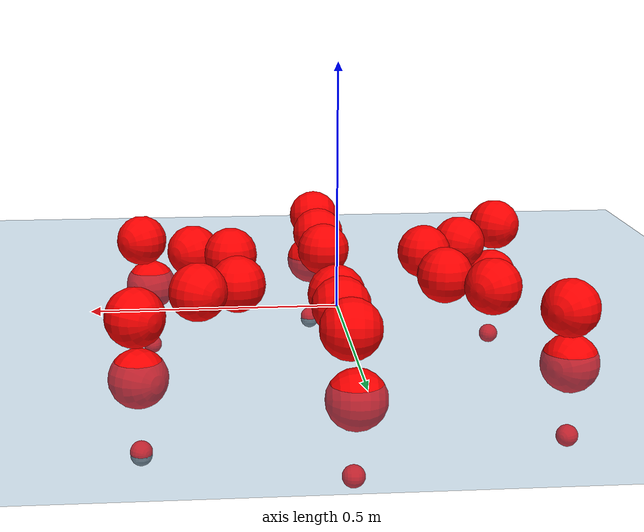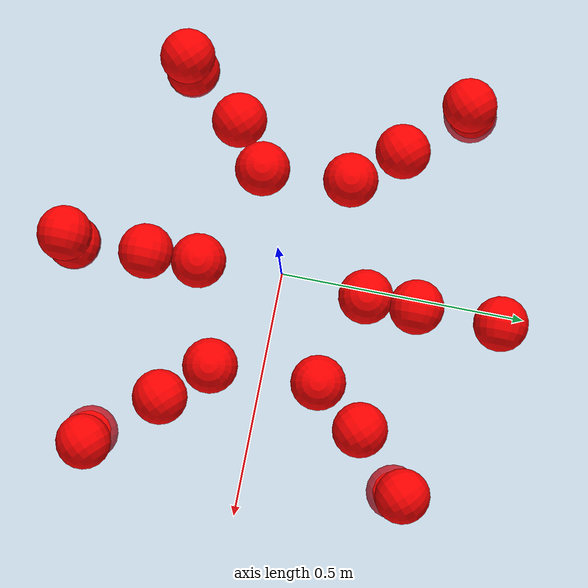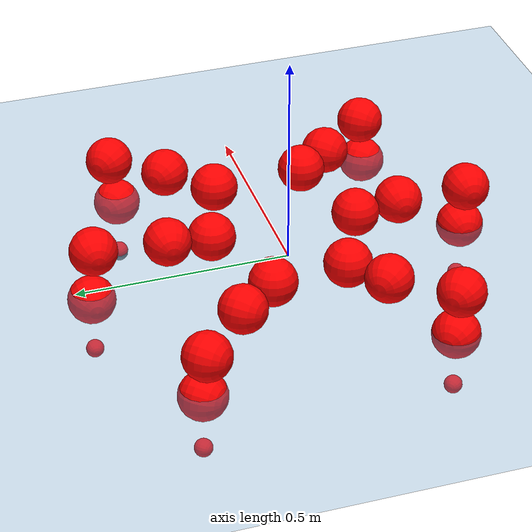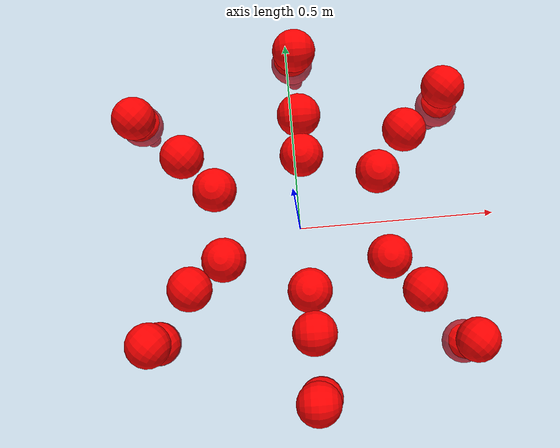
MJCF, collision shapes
<mujoco model="Golem">
  <compiler angle="radian" assetdir="assets" balanceinertia="true" inertiafromgeom="false"/>

  <option timestep="0.005" density="1.2" viscosity="2e-05"/>

  <size nkey="1"/>

  <visual>
    <quality shadowsize="8192"/>
    <map shadowclip="0.5"/>
  </visual>

  <default>
    <default class="/">
      <joint armature="0.01" damping="0.01" frictionloss="0.01"/>
      <geom contype="0" conaffinity="0" group="1" solref="-1000 -80"/>
      <site size="0.01 0.005 0.005" group="5"/>
      <general forcelimited="true" biastype="affine" gainprm="25" biasprm="0 -25 -0.5"/>
      <default class="visual">
        <geom type="mesh" group="2"/>
      </default>
      <default class="collision">
        <geom group="3"/>
      </default>
      <default class="foot">
        <geom size="0.01 0 0" condim="6" group="4" priority="1" solimp="0.015 1 0.01"/>
      </default>
      <default class="reward_collision_sphere">
        <geom group="5" rgba="1 0 0 1"/>
      </default>
    </default>
  </default>

  <asset>
    <texture type="skybox" colorspace="auto" name="//unnamed_texture_0" builtin="gradient" rgb1="0.95 0.95 0.95" rgb2="0.95 0.95 0.95" width="100" height="600"/>
    <texture type="2d" colorspace="auto" name="texplane" builtin="checker" rgb1="0.345 0.575 0.748" rgb2="0.345 0.575 0.748" markrgb="1 1 1" width="512" height="512"/>
    <material name="MatPlane" class="/" texture="texplane" texuniform="true" texrepeat="2 2" specular="0.9"/>
    <mesh name="body" class="/" file="body.stl" scale="0.001 0.001 0.001"/>
    <mesh name="coxa" class="/" file="coxa.stl" scale="0.001 0.001 0.001"/>
    <mesh name="femur" class="/" file="femur.stl" scale="0.001 0.001 0.001"/>
    <mesh name="tibia" class="/" file="tibia.stl" scale="0.001 0.001 0.001"/>
    <mesh name="tarsus" class="/" file="tarsus.stl" scale="0.001 0.001 0.001"/>
  </asset>

  <worldbody>
    <geom name="floor" class="/" size="100 100 0.125" type="plane" group="0" material="MatPlane"/>
    <light name="toplight_shadow" class="/" pos="0 0 5" dir="0.0990148 0.0990148 -0.990148" type="directional" ambient="0.04 0.04 0.04" diffuse="0.55 0.55 0.55" specular="0.12 0.12 0.12"/>
    <light name="toplight_fill" class="/" pos="0 0 5" dir="0.0990148 0.0990148 -0.990148" type="directional" castshadow="false" ambient="0.04 0.04 0.04" diffuse="0.3 0.3 0.3" specular="0.08 0.08 0.08"/>
    <body name="trunk" pos="0.00996644 0.00915256 -0.00394129" quat="0.999993 -0.00320104 -0.00175289 -0.00029427">
      <inertial pos="-0.00983706 -0.00318217 0.0149281" quat="0.998905 -0.0104563 0.0120242 -0.0439942" mass="9.09608" diaginertia="0.0352973 0.0682451 0.031215"/>
      <joint name="//unnamed_joint_0" type="free"/>
      <geom name="//unnamed_geom_1" class="/" pos="0 0 0.0845406" quat="1 0 0 0" type="mesh" rgba="0.9 0.9 0.9 1" mesh="body"/>
      <site name="imu" class="/" pos="0.109845 -0.0496938 0.132751" size="0.0138532"/>
      <camera name="track" class="/" pos="0 -3.03098 0" quat="0.707107 0.707107 0 0" mode="trackcom"/>
      <camera name="ego_camera" class="/" pos="0.171537 0 0.132095" quat="-0.5 -0.5 0.5 0.5"/>
      <body name="coxa_RR" pos="-0.228732 -0.11333 0.097264" quat="0.382747 0.0017427 -0.00235227 -0.923848">
        <inertial pos="0.000154917 -0.00343998 -0.00615227" quat="1 0.000368838 -0.000296885 -0.000290605" mass="0.497196" diaginertia="0.0420232 0.0731733 0.0453104"/>
        <joint name="coxa_joint_RR" class="/" pos="0 0 0" axis="-0.00101 0.00614247 -0.999981" range="-3.12394 3.28052" armature="0.0165669" damping="0.0333926" frictionloss="0.0153756"/>
        <geom name="//unnamed_geom_2" class="/" type="mesh" rgba="0.2 0.2 0.2 1" mesh="coxa"/>
        <geom name="//unnamed_geom_3" class="reward_collision_sphere" size="0.0554127" pos="-0.0395855 0 0"/>
        <body name="femur_RR" pos="0.0672198 -0.0159503 0.00305432" quat="0.499861 -0.499866 0.500035 0.500238">
          <inertial pos="0.0150938 0.000381889 0.016222" quat="0.997029 -0.0100206 -0.0596831 0.047642" mass="0.608028" diaginertia="0.0463742 0.0933408 0.0477066"/>
          <joint name="femur_joint_RR" class="/" pos="0 0 0" axis="0.0352326 0.0182668 -0.999212" range="-3.03371 3.12779" armature="0.0146783" damping="0" frictionloss="0.0143869"/>
          <geom name="//unnamed_geom_4" class="/" type="mesh" rgba="0.9 0.9 0.9 1" mesh="femur"/>
          <geom name="//unnamed_geom_5" class="reward_collision_sphere" size="0.0554127"/>
          <body name="tibia_RR" pos="-0.00842425 -0.164021 0.0147932" quat="0.000300322 1 0.000101475 -0.000911645">
            <inertial pos="-0.000359671 -5.5011e-06 0.0128709" quat="0.99897 -0.0398755 0.0214759 0.00281035" mass="0.382721" diaginertia="0.033217 0.05449 0.031931"/>
            <joint name="tibia_joint_RR" class="/" pos="0 0 0" axis="-0.0599881 0.00295099 0.998195" stiffness="0.042874" range="-2.95413 3.14762" armature="0.019289" damping="0.0183051" frictionloss="0.0218141"/>
            <geom name="//unnamed_geom_6" class="/" type="mesh" rgba="0.2 0.2 0.2 1" mesh="tibia"/>
            <geom name="//unnamed_geom_7" class="reward_collision_sphere" size="0.0554127"/>
            <body name="tarsus_RR" pos="0.11395 -0.00689431 0.00123846" quat="1 -9.90287e-05 0.000109747 -4.03241e-05">
              <inertial pos="0.0863397 0.000501948 -1.70112e-06" quat="0.465916 0.550773 0.519819 0.457559" mass="0.473808" diaginertia="0.0407573 0.0886959 0.0377556"/>
              <joint name="tarsus_joint_RR" class="/" pos="0 0 0" axis="0.0221121 -0.0751897 0.996924" range="-3.10251 3.33536" armature="0.0186784" damping="0.0121332" frictionloss="0.0101801"/>
              <geom name="//unnamed_geom_8" class="/" type="mesh" rgba="0.9 0.9 0.9 1" mesh="tarsus"/>
              <geom name="foot_1" class="foot" size="0.0142377" pos="0.147786 0 0" quat="0 -0.707107 0 0.707107"/>
              <geom name="//unnamed_geom_10" class="reward_collision_sphere" size="0.0554127"/>
              <geom name="//unnamed_geom_11" class="reward_collision_sphere" size="0.0207798" pos="0.141848 0 0"/>
              <site name="foot_1" class="foot" pos="0.147786 0 0" quat="0 -0.707107 0 0.707107" size="0.0138532"/>
            </body>
          </body>
        </body>
      </body>
      <body name="coxa_RM" pos="0.00328984 -0.215077 0.0827202" quat="0.705179 0.00406156 -0.00614232 -0.708991">
        <inertial pos="0.0121375 -0.000660836 0.0139241" quat="0.998441 -0.0472367 0.0256351 -0.015086" mass="0.522034" diaginertia="0.0531833 0.0794873 0.0468686"/>
        <joint name="coxa_joint_RM" class="/" pos="0 0 0" axis="-0.00309919 0.00137398 -0.999994" range="-3.05697 3.1942" armature="0.0115613" damping="0.0231162" frictionloss="0.0189223"/>
        <geom name="//unnamed_geom_12" class="/" type="mesh" rgba="0.2 0.2 0.2 1" mesh="coxa"/>
        <geom name="//unnamed_geom_13" class="reward_collision_sphere" size="0.0554127" pos="-0.0395855 0 0"/>
        <body name="femur_RM" pos="0.0661098 0.00350082 0.0107625" quat="0.502059 -0.495622 0.502389 0.499901">
          <inertial pos="-0.0142592 -4.39055e-06 -0.000624095" quat="0.997197 0.0650017 0.0236182 0.0285581" mass="0.569152" diaginertia="0.0379093 0.0929102 0.042448"/>
          <joint name="femur_joint_RM" class="/" pos="0 0 0" axis="-0.00103783 -0.0603689 -0.998176" stiffness="0.0450659" range="-3.15675 3.13068" armature="0.00967145" damping="0" frictionloss="0.0155667"/>
          <geom name="//unnamed_geom_14" class="/" type="mesh" rgba="0.9 0.9 0.9 1" mesh="femur"/>
          <geom name="//unnamed_geom_15" class="reward_collision_sphere" size="0.0554127"/>
          <body name="tibia_RM" pos="-0.0047103 -0.165998 -0.00131051" quat="6.77952e-05 1 0.000443846 -4.88012e-05">
            <inertial pos="0.0150419 -0.00697197 0.00925603" quat="0.999848 0.00510352 -0.000429735 0.0166542" mass="0.443059" diaginertia="0.0320378 0.0851855 0.0447416"/>
            <joint name="tibia_joint_RM" class="/" pos="0 0 0" axis="0.0204188 -0.0454076 0.99876" stiffness="0.0224125" range="-3.16444 3.27576" armature="0.0135353" damping="0.0173346" frictionloss="0.0184552"/>
            <geom name="//unnamed_geom_16" class="/" type="mesh" rgba="0.2 0.2 0.2 1" mesh="tibia"/>
            <geom name="//unnamed_geom_17" class="reward_collision_sphere" size="0.0554127"/>
            <body name="tarsus_RM" pos="0.106941 -0.00711602 -0.00382022" quat="1 -0.00053286 -0.000170198 0.000543011">
              <inertial pos="0.083681 0.00571109 0.00225019" quat="0.481552 0.504935 0.503913 0.509136" mass="0.478681" diaginertia="0.0431589 0.0740107 0.032049"/>
              <joint name="tarsus_joint_RM" class="/" pos="0 0 0" axis="0.0286409 0.0494045 0.998368" range="-3.17666 3.15682" armature="0.0145446" damping="0.00442268" frictionloss="0.0125197"/>
              <geom name="//unnamed_geom_18" class="/" type="mesh" rgba="0.9 0.9 0.9 1" mesh="tarsus"/>
              <geom name="foot_2" class="foot" size="0.0209055" pos="0.147786 0 0" quat="0 -0.707107 0 0.707107"/>
              <geom name="//unnamed_geom_20" class="reward_collision_sphere" size="0.0554127"/>
              <geom name="//unnamed_geom_21" class="reward_collision_sphere" size="0.0207798" pos="0.141848 0 0"/>
              <site name="foot_2" class="foot" pos="0.147786 0 0" quat="0 -0.707107 0 0.707107" size="0.0138532"/>
            </body>
          </body>
        </body>
      </body>
      <body name="coxa_RF" pos="0.233212 -0.138766 0.0917469" quat="0.923864 -1.37565e-05 -0.000139285 -0.382721">
        <inertial pos="0.0158692 -0.0037174 -0.00109469" quat="0.998048 -0.00788267 -0.00032784 0.061959" mass="0.38389" diaginertia="0.0323307 0.0860336 0.0365083"/>
        <joint name="coxa_joint_RF" class="/" pos="0 0 0" axis="5.97805e-05 -0.00065627 -1" range="-2.99533 3.14725" armature="0.00663545" damping="0.0325621" frictionloss="0.0180198"/>
        <geom name="//unnamed_geom_22" class="/" type="mesh" rgba="0.2 0.2 0.2 1" mesh="coxa"/>
        <geom name="//unnamed_geom_23" class="reward_collision_sphere" size="0.0554127" pos="-0.0395855 0 0"/>
        <body name="femur_RF" pos="0.0780122 -0.00503142 -0.0139838" quat="0.500873 -0.500667 0.49746 0.500992">
          <inertial pos="-0.0088854 -0.0149795 -0.00849573" quat="0.999944 -0.00458718 -0.00369533 -0.00876492" mass="0.603624" diaginertia="0.0353427 0.0929227 0.0418565"/>
          <joint name="femur_joint_RF" class="/" pos="0 0 0" axis="0.0459567 0.0150344 -0.99883" stiffness="0.0729945" range="-3.21011 3.34167" armature="0.0143337" damping="0" frictionloss="0.0172886"/>
          <geom name="//unnamed_geom_24" class="/" type="mesh" rgba="0.9 0.9 0.9 1" mesh="femur"/>
          <geom name="//unnamed_geom_25" class="reward_collision_sphere" size="0.0554127"/>
          <body name="tibia_RF" pos="0.00765636 -0.175411 -0.0116768" quat="0.000850923 1 0.000113614 -0.00026552">
            <inertial pos="0.0136295 0.010626 -0.0125278" quat="0.999008 -0.0384806 0.0214249 -0.00662833" mass="0.461846" diaginertia="0.0401578 0.0783036 0.0400738"/>
            <joint name="tibia_joint_RF" class="/" pos="0 0 0" axis="0.00765726 0.0175382 0.999817" range="-3.17668 3.35596" armature="0.014926" damping="0.0885264" frictionloss="0.0127659"/>
            <geom name="//unnamed_geom_26" class="/" type="mesh" rgba="0.2 0.2 0.2 1" mesh="tibia"/>
            <geom name="//unnamed_geom_27" class="reward_collision_sphere" size="0.0554127"/>
            <body name="tarsus_RF" pos="0.104005 -0.0137623 0.0132611" quat="0.999987 0.00106042 0.00206562 -0.00456136">
              <inertial pos="0.0809135 0.000647552 0.000855434" quat="0.489779 0.488341 0.514684 0.506695" mass="0.486187" diaginertia="0.0360195 0.0639981 0.0459438"/>
              <joint name="tarsus_joint_RF" class="/" pos="0 0 0" axis="-0.0308758 0.0080836 0.999491" stiffness="0.0256509" range="-2.97152 3.15093" armature="0.00600988" damping="0" frictionloss="0.00280023"/>
              <geom name="//unnamed_geom_28" class="/" type="mesh" rgba="0.9 0.9 0.9 1" mesh="tarsus"/>
              <geom name="foot_3" class="foot" size="0.0064203" pos="0.147786 0 0" quat="0 -0.707107 0 0.707107"/>
              <geom name="//unnamed_geom_30" class="reward_collision_sphere" size="0.0554127"/>
              <geom name="//unnamed_geom_31" class="reward_collision_sphere" size="0.0207798" pos="0.141848 0 0"/>
              <site name="foot_3" class="foot" pos="0.147786 0 0" quat="0 -0.707107 0 0.707107" size="0.0138532"/>
            </body>
          </body>
        </body>
      </body>
      <body name="coxa_LR" pos="-0.240837 0.120259 0.0948495" quat="0.387637 0.00403299 -0.0015693 0.921802">
        <inertial pos="0.00340557 -0.00475172 0.0154539" quat="0.998341 -0.00174371 -0.0136179 0.0559165" mass="0.741869" diaginertia="0.0489452 0.0958727 0.0461586"/>
        <joint name="coxa_joint_LR" class="/" pos="0 0 0" axis="0.00365631 0.000224354 -0.999993" range="-3.02924 2.82736" armature="0.00595043" damping="0" frictionloss="0.0246118"/>
        <geom name="//unnamed_geom_32" class="/" type="mesh" rgba="0.2 0.2 0.2 1" mesh="coxa"/>
        <geom name="//unnamed_geom_33" class="reward_collision_sphere" size="0.0554127" pos="-0.0395855 0 0"/>
        <body name="femur_LR" pos="0.0795553 -0.00959777 0.000390295" quat="0.500419 -0.500091 0.500104 0.499385">
          <inertial pos="0.00100099 0.00216448 0.00247264" quat="0.999011 -0.0215506 -0.0350627 0.0168527" mass="0.590478" diaginertia="0.0482808 0.0709237 0.0433981"/>
          <joint name="femur_joint_LR" class="/" pos="0 0 0" axis="0.0017493 0.0284153 0.999595" stiffness="0.0481856" range="-3.16917 3.36844" armature="0.00727872" damping="0" frictionloss="0.0177076"/>
          <geom name="//unnamed_geom_34" class="/" type="mesh" rgba="0.9 0.9 0.9 1" mesh="femur"/>
          <geom name="//unnamed_geom_35" class="reward_collision_sphere" size="0.0554127"/>
          <body name="tibia_LR" pos="0.0123572 -0.165625 0.00543176" quat="-0.00336872 0.999983 -0.0046471 -0.000322179">
            <inertial pos="-0.00965837 -0.014533 -0.000699334" quat="0.998247 -0.0571889 0.00780033 -0.0130883" mass="0.618768" diaginertia="0.0328824 0.0694996 0.0492732"/>
            <joint name="tibia_joint_LR" class="/" pos="0 0 0" axis="0.00322846 -0.00125262 -0.999994" range="-3.13351 3.13085" armature="0.00949143" damping="0" frictionloss="0.00774647"/>
            <geom name="//unnamed_geom_36" class="/" type="mesh" rgba="0.2 0.2 0.2 1" mesh="tibia"/>
            <geom name="//unnamed_geom_37" class="reward_collision_sphere" size="0.0554127"/>
            <body name="tarsus_LR" pos="0.102633 0.00614483 0.00806524" quat="0.999993 -0.00139108 -0.00343537 0.000249732">
              <inertial pos="0.0871705 0.00962379 0.00621084" quat="0.475326 0.518366 0.518539 0.486291" mass="0.6629" diaginertia="0.0503017 0.0964702 0.0481193"/>
              <joint name="tarsus_joint_LR" class="/" pos="0 0 0" axis="0.00941798 0.00574412 -0.999939" range="-3.06754 3.22268" armature="0.0253293" damping="0.00633226" frictionloss="0.0181753"/>
              <geom name="//unnamed_geom_38" class="/" type="mesh" rgba="0.9 0.9 0.9 1" mesh="tarsus"/>
              <geom name="foot_4" class="foot" size="0.0115231" pos="0.147786 0 0" quat="0.707107 0 -0.707107 0"/>
              <geom name="//unnamed_geom_40" class="reward_collision_sphere" size="0.0554127"/>
              <geom name="//unnamed_geom_41" class="reward_collision_sphere" size="0.0207798" pos="0.141848 0 0"/>
              <site name="foot_4" class="foot" pos="0.147786 0 0" quat="0.707107 0 -0.707107 0" size="0.0138532"/>
            </body>
          </body>
        </body>
      </body>
      <body name="coxa_LM" pos="0.0100394 0.206061 0.0823379" quat="0.70861 -0.00774236 -0.00230731 0.705554">
        <inertial pos="-0.0124791 0.0135427 0.00910785" quat="0.998105 0.0578065 -0.0070751 0.0198545" mass="0.515659" diaginertia="0.0411358 0.068626 0.0363112"/>
        <joint name="coxa_joint_LM" class="/" pos="0 0 0" axis="-0.00558385 0.00455676 -0.999974" range="-3.13098 3.13405" armature="0.00341073" damping="0.0502739" frictionloss="0.00978656"/>
        <geom name="//unnamed_geom_42" class="/" type="mesh" rgba="0.2 0.2 0.2 1" mesh="coxa"/>
        <geom name="//unnamed_geom_43" class="reward_collision_sphere" size="0.0554127" pos="-0.0395855 0 0"/>
        <body name="femur_LM" pos="0.0633034 -0.00103376 0.00753426" quat="0.501736 -0.503425 0.498528 0.49628">
          <inertial pos="0.012116 -0.00119094 0.013633" quat="0.99896 -0.0156083 -0.0351782 0.0244368" mass="0.384289" diaginertia="0.036597 0.066901 0.0346691"/>
          <joint name="femur_joint_LM" class="/" pos="0 0 0" axis="-0.00626505 -0.00026812 0.99998" range="-3.33343 3.03371" armature="0.00653911" damping="0.0448918" frictionloss="0.0144595"/>
          <geom name="//unnamed_geom_44" class="/" type="mesh" rgba="0.9 0.9 0.9 1" mesh="femur"/>
          <geom name="//unnamed_geom_45" class="reward_collision_sphere" size="0.0554127"/>
          <body name="tibia_LM" pos="-0.00945633 -0.169992 -0.000797241" quat="0.000703382 0.999996 0.00249471 -0.000970359">
            <inertial pos="-0.0151431 -0.015795 -0.0161976" quat="1 -0.000166403 -0.000348461 -0.000170763" mass="0.536347" diaginertia="0.0446683 0.0951255 0.0353819"/>
            <joint name="tibia_joint_LM" class="/" pos="0 0 0" axis="0.0172158 -0.0396252 -0.999066" stiffness="0.0543276" range="-3.24602 3.14137" armature="0.00642274" damping="0" frictionloss="0.0217589"/>
            <geom name="//unnamed_geom_46" class="/" type="mesh" rgba="0.2 0.2 0.2 1" mesh="tibia"/>
            <geom name="//unnamed_geom_47" class="reward_collision_sphere" size="0.0554127"/>
            <body name="tarsus_LM" pos="0.122708 0.0128621 -0.0119812" quat="0.999987 -0.0046532 -0.00185491 -0.000165521">
              <inertial pos="0.0726725 -0.0070704 -0.00951026" quat="0.497619 0.496476 0.494706 0.511031" mass="0.431594" diaginertia="0.0381816 0.0511154 0.0354554"/>
              <joint name="tarsus_joint_LM" class="/" pos="0 0 0" axis="-0.0447641 -0.0394585 -0.998218" range="-2.80063 3.08138" armature="0.0135765" damping="0" frictionloss="0.0142764"/>
              <geom name="//unnamed_geom_48" class="/" type="mesh" rgba="0.9 0.9 0.9 1" mesh="tarsus"/>
              <geom name="foot_5" class="foot" size="0.014235" pos="0.147786 0 0" quat="0.707107 0 -0.707107 0"/>
              <geom name="//unnamed_geom_50" class="reward_collision_sphere" size="0.0554127"/>
              <geom name="//unnamed_geom_51" class="reward_collision_sphere" size="0.0207798" pos="0.141848 0 0"/>
              <site name="foot_5" class="foot" pos="0.147786 0 0" quat="0.707107 0 -0.707107 0" size="0.0138532"/>
            </body>
          </body>
        </body>
      </body>
      <body name="coxa_LF" pos="0.224963 0.134056 0.0873273" quat="0.924894 0.00348822 0.00532138 0.380172">
        <inertial pos="-8.17237e-05 -0.0154474 0.000834923" quat="0.999974 0.000717183 -0.00406191 0.00587548" mass="0.491656" diaginertia="0.0360093 0.0550875 0.0322419"/>
        <joint name="coxa_joint_LF" class="/" pos="0 0 0" axis="-0.0117564 0.0477276 -0.998791" range="-3.12706 3.0965" armature="0.00300346" damping="0" frictionloss="0.0100432"/>
        <geom name="//unnamed_geom_52" class="/" type="mesh" rgba="0.2 0.2 0.2 1" mesh="coxa"/>
        <geom name="//unnamed_geom_53" class="reward_collision_sphere" size="0.0554127" pos="-0.0395855 0 0"/>
        <body name="femur_LF" pos="0.0836622 0.0168861 0.0145626" quat="0.498918 -0.495786 0.503981 0.501279">
          <inertial pos="-0.0103689 0.0041326 -0.0161628" quat="0.997836 -0.0472675 0.0399584 -0.0221688" mass="0.512907" diaginertia="0.0446736 0.0633202 0.0411891"/>
          <joint name="femur_joint_LF" class="/" pos="0 0 0" axis="-0.0518138 0.0255478 0.99833" stiffness="0.056943" range="-3.13258 3.43845" armature="0.0151178" damping="0.0592051" frictionloss="0.0105248"/>
          <geom name="//unnamed_geom_54" class="/" type="mesh" rgba="0.9 0.9 0.9 1" mesh="femur"/>
          <geom name="//unnamed_geom_55" class="reward_collision_sphere" size="0.0554127"/>
          <body name="tibia_LF" pos="0.0108065 -0.155545 -0.00124191" quat="-0.000764887 0.999978 -0.00463454 -0.00473203">
            <inertial pos="-0.00459349 0.0145412 -0.000690869" quat="0.999849 -0.0148148 0.00814528 0.00409222" mass="0.544329" diaginertia="0.044858 0.0807132 0.0437389"/>
            <joint name="tibia_joint_LF" class="/" pos="0 0 0" axis="-0.0619898 -0.00677056 -0.998054" stiffness="0.00715759" range="-2.88856 3.1007" armature="0.00741471" damping="0.0117699" frictionloss="0.0042102"/>
            <geom name="//unnamed_geom_56" class="/" type="mesh" rgba="0.2 0.2 0.2 1" mesh="tibia"/>
            <geom name="//unnamed_geom_57" class="reward_collision_sphere" size="0.0554127"/>
            <body name="tarsus_LF" pos="0.118915 -0.00963652 0.00738587" quat="0.999966 0.00621283 0.00495471 0.0022546">
              <inertial pos="0.0890969 0.00337185 0.0015058" quat="0.501948 0.497359 0.508151 0.492407" mass="0.508796" diaginertia="0.0421892 0.0830084 0.0456216"/>
              <joint name="tarsus_joint_LF" class="/" pos="0 0 0" axis="0.0790978 -0.0167307 -0.996726" range="-3.26681 3.38767" armature="0.00961331" damping="0.0740785" frictionloss="0.00814334"/>
              <geom name="//unnamed_geom_58" class="/" type="mesh" rgba="0.9 0.9 0.9 1" mesh="tarsus"/>
              <geom name="foot_6" class="foot" size="0.0203749" pos="0.147786 0 0" quat="0.707107 0 -0.707107 0"/>
              <geom name="//unnamed_geom_60" class="reward_collision_sphere" size="0.0554127"/>
              <geom name="//unnamed_geom_61" class="reward_collision_sphere" size="0.0207798" pos="0.141848 0 0"/>
              <site name="foot_6" class="foot" pos="0.147786 0 0" quat="0.707107 0 -0.707107 0" size="0.0138532"/>
            </body>
          </body>
        </body>
      </body>
    </body>
  </worldbody>

  <contact>
    <pair class="/" geom1="floor" geom2="foot_1" name="//unnamed_contact_0"/>
    <pair class="/" geom1="floor" geom2="foot_2" name="//unnamed_contact_1"/>
    <pair class="/" geom1="floor" geom2="foot_3" name="//unnamed_contact_2"/>
    <pair class="/" geom1="floor" geom2="foot_4" name="//unnamed_contact_3"/>
    <pair class="/" geom1="floor" geom2="foot_5" name="//unnamed_contact_4"/>
    <pair class="/" geom1="floor" geom2="foot_6" name="//unnamed_contact_5"/>
  </contact>

  <actuator>
    <general name="coxa_joint_RR" class="/" joint="coxa_joint_RR" forcerange="-15.6765 15.6765" gainprm="29.0312" biasprm="0 -29.0312 -0.857185"/>
    <general name="femur_joint_RR" class="/" joint="femur_joint_RR" forcerange="-7.15959 7.15959" gainprm="29.0312" biasprm="0 -29.0312 -0.857185"/>
    <general name="tibia_joint_RR" class="/" joint="tibia_joint_RR" forcerange="-16.1059 16.1059" gainprm="29.0312" biasprm="0 -29.0312 -0.857185"/>
    <general name="tarsus_joint_RR" class="/" joint="tarsus_joint_RR" forcerange="-6.81355 6.81355" gainprm="29.0312" biasprm="0 -29.0312 -0.857185"/>
    <general name="coxa_joint_RM" class="/" joint="coxa_joint_RM" forcerange="-10.2097 10.2097" gainprm="29.0312" biasprm="0 -29.0312 -0.857185"/>
    <general name="femur_joint_RM" class="/" joint="femur_joint_RM" forcerange="-9.96363 9.96363" gainprm="29.0312" biasprm="0 -29.0312 -0.857185"/>
    <general name="tibia_joint_RM" class="/" joint="tibia_joint_RM" forcerange="-15.2727 15.2727" gainprm="29.0312" biasprm="0 -29.0312 -0.857185"/>
    <general name="tarsus_joint_RM" class="/" joint="tarsus_joint_RM" forcerange="-4.27808 4.27808" gainprm="29.0312" biasprm="0 -29.0312 -0.857185"/>
    <general name="coxa_joint_RF" class="/" joint="coxa_joint_RF" forcerange="-8.43996 8.43996" gainprm="29.0312" biasprm="0 -29.0312 -0.857185"/>
    <general name="femur_joint_RF" class="/" joint="femur_joint_RF" forcerange="-10.5205 10.5205" gainprm="29.0312" biasprm="0 -29.0312 -0.857185"/>
    <general name="tibia_joint_RF" class="/" joint="tibia_joint_RF" forcerange="-4.67033 4.67033" gainprm="29.0312" biasprm="0 -29.0312 -0.857185"/>
    <general name="tarsus_joint_RF" class="/" joint="tarsus_joint_RF" forcerange="-7.2487 7.2487" gainprm="29.0312" biasprm="0 -29.0312 -0.857185"/>
    <general name="coxa_joint_LR" class="/" joint="coxa_joint_LR" forcerange="-10.4554 10.4554" gainprm="29.0312" biasprm="0 -29.0312 -0.857185"/>
    <general name="femur_joint_LR" class="/" joint="femur_joint_LR" forcerange="-14.7559 14.7559" gainprm="29.0312" biasprm="0 -29.0312 -0.857185"/>
    <general name="tibia_joint_LR" class="/" joint="tibia_joint_LR" forcerange="-12.9394 12.9394" gainprm="29.0312" biasprm="0 -29.0312 -0.857185"/>
    <general name="tarsus_joint_LR" class="/" joint="tarsus_joint_LR" forcerange="-13.9696 13.9696" gainprm="29.0312" biasprm="0 -29.0312 -0.857185"/>
    <general name="coxa_joint_LM" class="/" joint="coxa_joint_LM" forcerange="-12.941 12.941" gainprm="29.0312" biasprm="0 -29.0312 -0.857185"/>
    <general name="femur_joint_LM" class="/" joint="femur_joint_LM" forcerange="-12.1341 12.1341" gainprm="29.0312" biasprm="0 -29.0312 -0.857185"/>
    <general name="tibia_joint_LM" class="/" joint="tibia_joint_LM" forcerange="-14.2835 14.2835" gainprm="29.0312" biasprm="0 -29.0312 -0.857185"/>
    <general name="tarsus_joint_LM" class="/" joint="tarsus_joint_LM" forcerange="-11.7378 11.7378" gainprm="29.0312" biasprm="0 -29.0312 -0.857185"/>
    <general name="coxa_joint_LF" class="/" joint="coxa_joint_LF" forcerange="-12.5568 12.5568" gainprm="29.0312" biasprm="0 -29.0312 -0.857185"/>
    <general name="femur_joint_LF" class="/" joint="femur_joint_LF" forcerange="-8.23328 8.23328" gainprm="29.0312" biasprm="0 -29.0312 -0.857185"/>
    <general name="tibia_joint_LF" class="/" joint="tibia_joint_LF" forcerange="-6.20488 6.20488" gainprm="29.0312" biasprm="0 -29.0312 -0.857185"/>
    <general name="tarsus_joint_LF" class="/" joint="tarsus_joint_LF" forcerange="-12.8724 12.8724" gainprm="29.0312" biasprm="0 -29.0312 -0.857185"/>
  </actuator>

  <sensor>
    <gyro site="imu" name="imu_angular_velocity"/>
    <velocimeter site="imu" name="imu_linear_velocity"/>
    <framelinvel objtype="site" objname="foot_1" name="foot_1_global_linear_velocity"/>
    <framelinvel objtype="site" objname="foot_2" name="foot_2_global_linear_velocity"/>
    <framelinvel objtype="site" objname="foot_3" name="foot_3_global_linear_velocity"/>
    <framelinvel objtype="site" objname="foot_4" name="foot_4_global_linear_velocity"/>
    <framelinvel objtype="site" objname="foot_5" name="foot_5_global_linear_velocity"/>
    <framelinvel objtype="site" objname="foot_6" name="foot_6_global_linear_velocity"/>
  </sensor>

  <keyframe>
    <key name="home" qpos="0 0 0.1457 1 0 0 0 0 0 0 0 0 0 0 0 0 0 0 0 0 0 0 0 0 0 0 0 0 0 0 0"/>
  </keyframe>
</mujoco>
